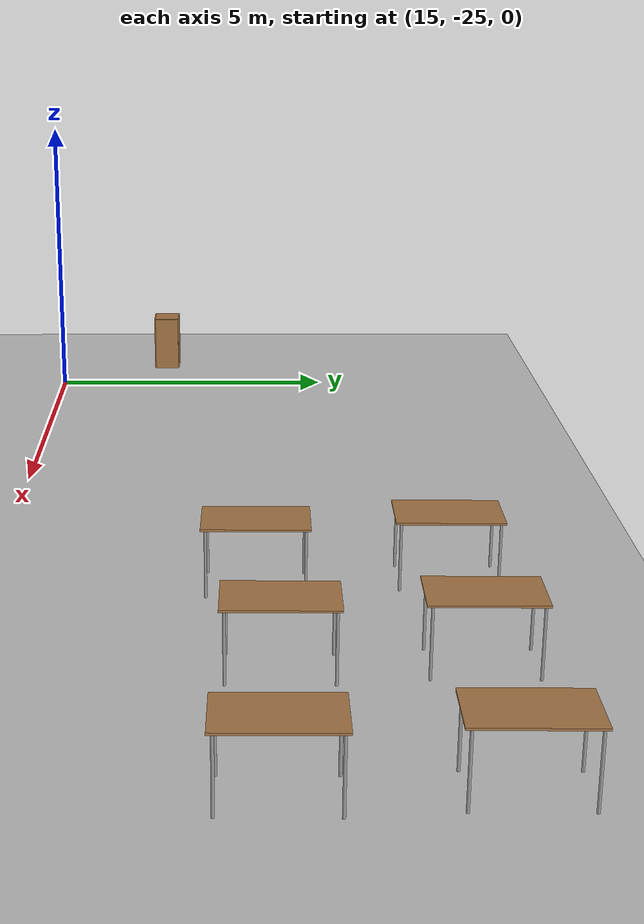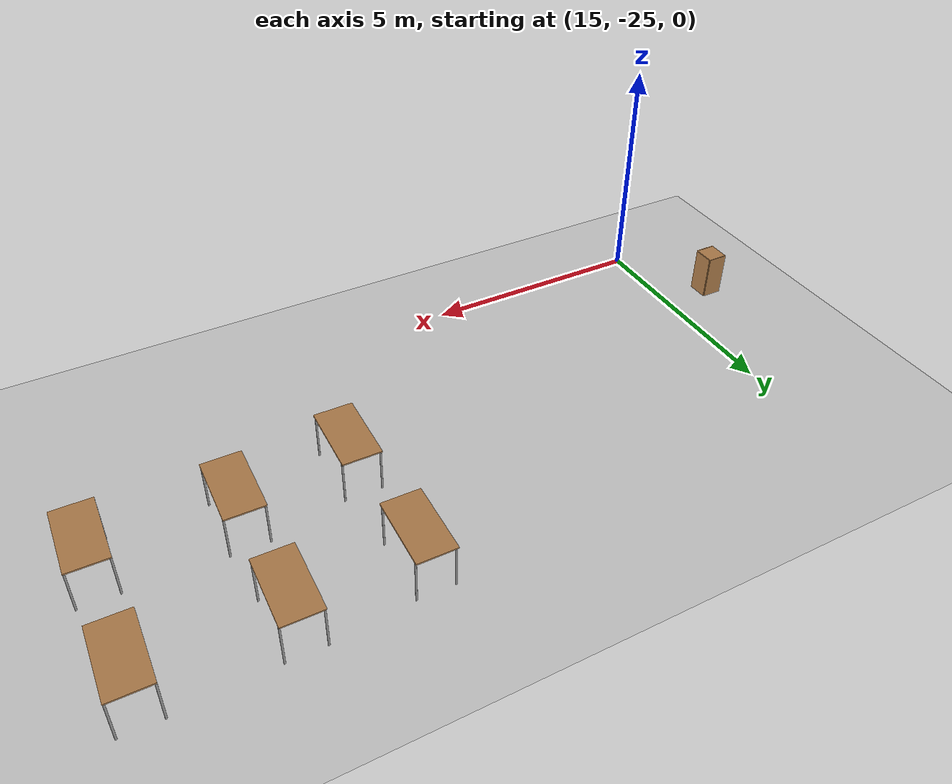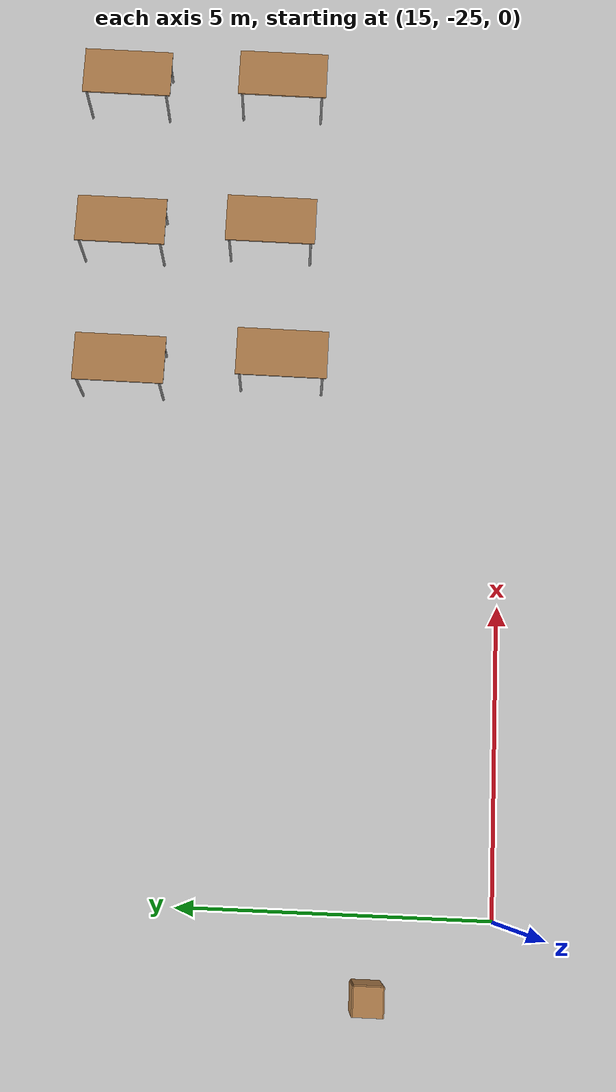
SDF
<sdf version="1.6">
 <world name="default">
  <model name="ground_plane">
   <static>1</static>
   <link name="link">
    <collision name="collision">
     <geometry><plane><normal>0 0 1</normal><size>100 100</size></plane></geometry>
     <surface>
      <contact><collide_bitmask>65535</collide_bitmask></contact>
      <friction><ode><mu>100</mu><mu2>50</mu2></ode></friction>
     </surface>
    </collision>
    <visual name="visual">
     <cast_shadows>0</cast_shadows>
     <geometry><plane><normal>0 0 1</normal><size>100 100</size></plane></geometry>
     <material>
      <script><uri>file://media/materials/scripts/gazebo.material</uri><name>Gazebo/Grey</name></script>
     </material>
    </visual>
   </link>
  </model>
  <model name="cabinet_1">
   <static>1</static>
   <link name="cabinet_bottom_plate">
    <inertial>
     <pose>0 0 -1 0 -0 0</pose>
     <inertia><ixx>2.05</ixx><ixy>0</ixy><ixz>0</ixz><iyy>2.05</iyy><iyz>0</iyz><izz>2.05</izz></inertia>
     <mass>25</mass>
    </inertial>
    <collision name="cabinet_bottom_plate_geom">
     <pose>0 0 0.01 0 -0 0</pose>
     <geometry><box><size>0.45 0.45 0.02</size></box></geometry>
    </collision>
    <visual name="cabinet_bottom_plate_geom_visual">
     <pose>0 0 0.01 0 -0 0</pose>
     <geometry><box><size>0.45 0.45 0.02</size></box></geometry>
     <material>
      <script><uri>file://media/materials/scripts/gazebo.material</uri><name>Gazebo/Wood</name></script>
     </material>
    </visual>
    <collision name="cabinet_bottom_plate_geom_cabinet_back_plate">
     <pose>0.235 0 0.51 0 -0 0</pose>
     <geometry><box><size>0.02 0.45 1.02</size></box></geometry>
    </collision>
    <visual name="cabinet_bottom_plate_geom_cabinet_back_plate_visual">
     <pose>0.235 0 0.51 0 -0 0</pose>
     <geometry><box><size>0.02 0.45 1.02</size></box></geometry>
     <material>
      <script><uri>file://media/materials/scripts/gazebo.material</uri><name>Gazebo/Wood</name></script>
     </material>
    </visual>
    <collision name="cabinet_bottom_plate_geom_cabinet_left_plate">
     <pose>0 0.235 0.51 0 -0 0</pose>
     <geometry><box><size>0.45 0.02 1.02</size></box></geometry>
    </collision>
    <visual name="cabinet_bottom_plate_geom_cabinet_left_plate_visual">
     <pose>0 0.235 0.51 0 -0 0</pose>
     <geometry><box><size>0.45 0.02 1.02</size></box></geometry>
     <material>
      <script><uri>file://media/materials/scripts/gazebo.material</uri><name>Gazebo/Wood</name></script>
     </material>
    </visual>
    <collision name="cabinet_bottom_plate_geom_cabinet_middle_plate">
     <pose>0 0 0.51 0 -0 0</pose>
     <geometry><box><size>0.45 0.45 0.02</size></box></geometry>
    </collision>
    <visual name="cabinet_bottom_plate_geom_cabinet_middle_plate_visual">
     <pose>0 0 0.51 0 -0 0</pose>
     <geometry><box><size>0.45 0.45 0.02</size></box></geometry>
     <material>
      <script><uri>file://media/materials/scripts/gazebo.material</uri><name>Gazebo/Wood</name></script>
     </material>
    </visual>
    <collision name="cabinet_bottom_plate_geom_cabinet_right_plate">
     <pose>0 -0.235 0.51 0 -0 0</pose>
     <geometry><box><size>0.45 0.02 1.02</size></box></geometry>
    </collision>
    <visual name="cabinet_bottom_plate_geom_cabinet_right_plate_visual">
     <pose>0 -0.235 0.51 0 -0 0</pose>
     <geometry><box><size>0.45 0.02 1.02</size></box></geometry>
     <material>
      <script><uri>file://media/materials/scripts/gazebo.material</uri><name>Gazebo/Wood</name></script>
     </material>
    </visual>
    <collision name="cabinet_bottom_plate_geom_cabinet_top_plate">
     <pose>0 0 1.01 0 -0 0</pose>
     <geometry><box><size>0.45 0.45 0.02</size></box></geometry>
    </collision>
    <visual name="cabinet_bottom_plate_geom_cabinet_top_plate_visual">
     <pose>0 0 1.01 0 -0 0</pose>
     <geometry><box><size>0.45 0.45 0.02</size></box></geometry>
     <material>
      <script><uri>file://media/materials/scripts/gazebo.material</uri><name>Gazebo/Wood</name></script>
     </material>
    </visual>
   </link>
   <pose>13.8077 -23.0331 0 0 -0 0</pose>
  </model>
  <model name="table">
   <static>1</static>
   <link name="link">
    <collision name="surface">
     <pose>0 0 1 0 -0 0</pose>
     <geometry><box><size>1.5 0.8 0.03</size></box></geometry>
     <surface><friction><ode><mu>0.6</mu><mu2>0.6</mu2></ode></friction></surface>
    </collision>
    <visual name="visual1">
     <pose>0 0 1 0 -0 0</pose>
     <geometry><box><size>1.5 0.8 0.03</size></box></geometry>
     <material>
      <script><uri>file://media/materials/scripts/gazebo.material</uri><name>Gazebo/Wood</name></script>
     </material>
    </visual>
    <collision name="front_left_leg">
     <pose>0.68 0.38 0.5 0 -0 0</pose>
     <geometry><cylinder><radius>0.02</radius><length>1</length></cylinder></geometry>
    </collision>
    <visual name="front_left_leg">
     <pose>0.68 0.38 0.5 0 -0 0</pose>
     <geometry><cylinder><radius>0.02</radius><length>1</length></cylinder></geometry>
     <material>
      <script><uri>file://media/materials/scripts/gazebo.material</uri><name>Gazebo/Grey</name></script>
     </material>
    </visual>
    <collision name="front_right_leg">
     <pose>0.68 -0.38 0.5 0 -0 0</pose>
     <geometry><cylinder><radius>0.02</radius><length>1</length></cylinder></geometry>
    </collision>
    <visual name="front_right_leg">
     <pose>0.68 -0.38 0.5 0 -0 0</pose>
     <geometry><cylinder><radius>0.02</radius><length>1</length></cylinder></geometry>
     <material>
      <script><uri>file://media/materials/scripts/gazebo.material</uri><name>Gazebo/Grey</name></script>
     </material>
    </visual>
    <collision name="back_right_leg">
     <pose>-0.68 -0.38 0.5 0 -0 0</pose>
     <geometry><cylinder><radius>0.02</radius><length>1</length></cylinder></geometry>
    </collision>
    <visual name="back_right_leg">
     <pose>-0.68 -0.38 0.5 0 -0 0</pose>
     <geometry><cylinder><radius>0.02</radius><length>1</length></cylinder></geometry>
     <material>
      <script><uri>file://media/materials/scripts/gazebo.material</uri><name>Gazebo/Grey</name></script>
     </material>
    </visual>
    <collision name="back_left_leg">
     <pose>-0.68 0.38 0.5 0 -0 0</pose>
     <geometry><cylinder><radius>0.02</radius><length>1</length></cylinder></geometry>
    </collision>
    <visual name="back_left_leg">
     <pose>-0.68 0.38 0.5 0 -0 0</pose>
     <geometry><cylinder><radius>0.02</radius><length>1</length></cylinder></geometry>
     <material>
      <script><uri>file://media/materials/scripts/gazebo.material</uri><name>Gazebo/Grey</name></script>
     </material>
    </visual>
   </link>
   <pose>28.8746 -21.0889 0 0 -0 1.56039</pose>
  </model>
  <model name="table_clone">
   <static>1</static>
   <link name="link">
    <collision name="surface">
     <pose>0 0 1 0 -0 0</pose>
     <geometry><box><size>1.5 0.8 0.03</size></box></geometry>
     <surface><friction><ode><mu>0.6</mu><mu2>0.6</mu2></ode></friction></surface>
    </collision>
    <visual name="visual1">
     <pose>0 0 1 0 -0 0</pose>
     <geometry><box><size>1.5 0.8 0.03</size></box></geometry>
     <material>
      <script><uri>file://media/materials/scripts/gazebo.material</uri><name>Gazebo/Wood</name></script>
     </material>
    </visual>
    <collision name="front_left_leg">
     <pose>0.68 0.38 0.5 0 -0 0</pose>
     <geometry><cylinder><radius>0.02</radius><length>1</length></cylinder></geometry>
    </collision>
    <visual name="front_left_leg">
     <pose>0.68 0.38 0.5 0 -0 0</pose>
     <geometry><cylinder><radius>0.02</radius><length>1</length></cylinder></geometry>
     <material>
      <script><uri>file://media/materials/scripts/gazebo.material</uri><name>Gazebo/Grey</name></script>
     </material>
    </visual>
    <collision name="front_right_leg">
     <pose>0.68 -0.38 0.5 0 -0 0</pose>
     <geometry><cylinder><radius>0.02</radius><length>1</length></cylinder></geometry>
    </collision>
    <visual name="front_right_leg">
     <pose>0.68 -0.38 0.5 0 -0 0</pose>
     <geometry><cylinder><radius>0.02</radius><length>1</length></cylinder></geometry>
     <material>
      <script><uri>file://media/materials/scripts/gazebo.material</uri><name>Gazebo/Grey</name></script>
     </material>
    </visual>
    <collision name="back_right_leg">
     <pose>-0.68 -0.38 0.5 0 -0 0</pose>
     <geometry><cylinder><radius>0.02</radius><length>1</length></cylinder></geometry>
    </collision>
    <visual name="back_right_leg">
     <pose>-0.68 -0.38 0.5 0 -0 0</pose>
     <geometry><cylinder><radius>0.02</radius><length>1</length></cylinder></geometry>
     <material>
      <script><uri>file://media/materials/scripts/gazebo.material</uri><name>Gazebo/Grey</name></script>
     </material>
    </visual>
    <collision name="back_left_leg">
     <pose>-0.68 0.38 0.5 0 -0 0</pose>
     <geometry><cylinder><radius>0.02</radius><length>1</length></cylinder></geometry>
    </collision>
    <visual name="back_left_leg">
     <pose>-0.68 0.38 0.5 0 -0 0</pose>
     <geometry><cylinder><radius>0.02</radius><length>1</length></cylinder></geometry>
     <material>
      <script><uri>file://media/materials/scripts/gazebo.material</uri><name>Gazebo/Grey</name></script>
     </material>
    </visual>
   </link>
   <pose>28.7951 -18.4331 0 0 -0 1.56039</pose>
  </model>
  <model name="table_clone_0">
   <static>1</static>
   <link name="link">
    <collision name="surface">
     <pose>0 0 1 0 -0 0</pose>
     <geometry><box><size>1.5 0.8 0.03</size></box></geometry>
     <surface><friction><ode><mu>0.6</mu><mu2>0.6</mu2></ode></friction></surface>
    </collision>
    <visual name="visual1">
     <pose>0 0 1 0 -0 0</pose>
     <geometry><box><size>1.5 0.8 0.03</size></box></geometry>
     <material>
      <script><uri>file://media/materials/scripts/gazebo.material</uri><name>Gazebo/Wood</name></script>
     </material>
    </visual>
    <collision name="front_left_leg">
     <pose>0.68 0.38 0.5 0 -0 0</pose>
     <geometry><cylinder><radius>0.02</radius><length>1</length></cylinder></geometry>
    </collision>
    <visual name="front_left_leg">
     <pose>0.68 0.38 0.5 0 -0 0</pose>
     <geometry><cylinder><radius>0.02</radius><length>1</length></cylinder></geometry>
     <material>
      <script><uri>file://media/materials/scripts/gazebo.material</uri><name>Gazebo/Grey</name></script>
     </material>
    </visual>
    <collision name="front_right_leg">
     <pose>0.68 -0.38 0.5 0 -0 0</pose>
     <geometry><cylinder><radius>0.02</radius><length>1</length></cylinder></geometry>
    </collision>
    <visual name="front_right_leg">
     <pose>0.68 -0.38 0.5 0 -0 0</pose>
     <geometry><cylinder><radius>0.02</radius><length>1</length></cylinder></geometry>
     <material>
      <script><uri>file://media/materials/scripts/gazebo.material</uri><name>Gazebo/Grey</name></script>
     </material>
    </visual>
    <collision name="back_right_leg">
     <pose>-0.68 -0.38 0.5 0 -0 0</pose>
     <geometry><cylinder><radius>0.02</radius><length>1</length></cylinder></geometry>
    </collision>
    <visual name="back_right_leg">
     <pose>-0.68 -0.38 0.5 0 -0 0</pose>
     <geometry><cylinder><radius>0.02</radius><length>1</length></cylinder></geometry>
     <material>
      <script><uri>file://media/materials/scripts/gazebo.material</uri><name>Gazebo/Grey</name></script>
     </material>
    </visual>
    <collision name="back_left_leg">
     <pose>-0.68 0.38 0.5 0 -0 0</pose>
     <geometry><cylinder><radius>0.02</radius><length>1</length></cylinder></geometry>
    </collision>
    <visual name="back_left_leg">
     <pose>-0.68 0.38 0.5 0 -0 0</pose>
     <geometry><cylinder><radius>0.02</radius><length>1</length></cylinder></geometry>
     <material>
      <script><uri>file://media/materials/scripts/gazebo.material</uri><name>Gazebo/Grey</name></script>
     </material>
    </visual>
   </link>
   <pose>26.2163 -21.0073 0 0 -0 1.56039</pose>
  </model>
  <model name="table_clone_1">
   <static>1</static>
   <link name="link">
    <collision name="surface">
     <pose>0 0 1 0 -0 0</pose>
     <geometry><box><size>1.5 0.8 0.03</size></box></geometry>
     <surface><friction><ode><mu>0.6</mu><mu2>0.6</mu2></ode></friction></surface>
    </collision>
    <visual name="visual1">
     <pose>0 0 1 0 -0 0</pose>
     <geometry><box><size>1.5 0.8 0.03</size></box></geometry>
     <material>
      <script><uri>file://media/materials/scripts/gazebo.material</uri><name>Gazebo/Wood</name></script>
     </material>
    </visual>
    <collision name="front_left_leg">
     <pose>0.68 0.38 0.5 0 -0 0</pose>
     <geometry><cylinder><radius>0.02</radius><length>1</length></cylinder></geometry>
    </collision>
    <visual name="front_left_leg">
     <pose>0.68 0.38 0.5 0 -0 0</pose>
     <geometry><cylinder><radius>0.02</radius><length>1</length></cylinder></geometry>
     <material>
      <script><uri>file://media/materials/scripts/gazebo.material</uri><name>Gazebo/Grey</name></script>
     </material>
    </visual>
    <collision name="front_right_leg">
     <pose>0.68 -0.38 0.5 0 -0 0</pose>
     <geometry><cylinder><radius>0.02</radius><length>1</length></cylinder></geometry>
    </collision>
    <visual name="front_right_leg">
     <pose>0.68 -0.38 0.5 0 -0 0</pose>
     <geometry><cylinder><radius>0.02</radius><length>1</length></cylinder></geometry>
     <material>
      <script><uri>file://media/materials/scripts/gazebo.material</uri><name>Gazebo/Grey</name></script>
     </material>
    </visual>
    <collision name="back_right_leg">
     <pose>-0.68 -0.38 0.5 0 -0 0</pose>
     <geometry><cylinder><radius>0.02</radius><length>1</length></cylinder></geometry>
    </collision>
    <visual name="back_right_leg">
     <pose>-0.68 -0.38 0.5 0 -0 0</pose>
     <geometry><cylinder><radius>0.02</radius><length>1</length></cylinder></geometry>
     <material>
      <script><uri>file://media/materials/scripts/gazebo.material</uri><name>Gazebo/Grey</name></script>
     </material>
    </visual>
    <collision name="back_left_leg">
     <pose>-0.68 0.38 0.5 0 -0 0</pose>
     <geometry><cylinder><radius>0.02</radius><length>1</length></cylinder></geometry>
    </collision>
    <visual name="back_left_leg">
     <pose>-0.68 0.38 0.5 0 -0 0</pose>
     <geometry><cylinder><radius>0.02</radius><length>1</length></cylinder></geometry>
     <material>
      <script><uri>file://media/materials/scripts/gazebo.material</uri><name>Gazebo/Grey</name></script>
     </material>
    </visual>
   </link>
   <pose>26.1007 -18.4995 0 0 -0 1.56039</pose>
  </model>
  <model name="table_clone_3">
   <static>1</static>
   <link name="link">
    <collision name="surface">
     <pose>0 0 1 0 -0 0</pose>
     <geometry><box><size>1.5 0.8 0.03</size></box></geometry>
     <surface><friction><ode><mu>0.6</mu><mu2>0.6</mu2></ode></friction></surface>
    </collision>
    <visual name="visual1">
     <pose>0 0 1 0 -0 0</pose>
     <geometry><box><size>1.5 0.8 0.03</size></box></geometry>
     <material>
      <script><uri>file://media/materials/scripts/gazebo.material</uri><name>Gazebo/Wood</name></script>
     </material>
    </visual>
    <collision name="front_left_leg">
     <pose>0.68 0.38 0.5 0 -0 0</pose>
     <geometry><cylinder><radius>0.02</radius><length>1</length></cylinder></geometry>
    </collision>
    <visual name="front_left_leg">
     <pose>0.68 0.38 0.5 0 -0 0</pose>
     <geometry><cylinder><radius>0.02</radius><length>1</length></cylinder></geometry>
     <material>
      <script><uri>file://media/materials/scripts/gazebo.material</uri><name>Gazebo/Grey</name></script>
     </material>
    </visual>
    <collision name="front_right_leg">
     <pose>0.68 -0.38 0.5 0 -0 0</pose>
     <geometry><cylinder><radius>0.02</radius><length>1</length></cylinder></geometry>
    </collision>
    <visual name="front_right_leg">
     <pose>0.68 -0.38 0.5 0 -0 0</pose>
     <geometry><cylinder><radius>0.02</radius><length>1</length></cylinder></geometry>
     <material>
      <script><uri>file://media/materials/scripts/gazebo.material</uri><name>Gazebo/Grey</name></script>
     </material>
    </visual>
    <collision name="back_right_leg">
     <pose>-0.68 -0.38 0.5 0 -0 0</pose>
     <geometry><cylinder><radius>0.02</radius><length>1</length></cylinder></geometry>
    </collision>
    <visual name="back_right_leg">
     <pose>-0.68 -0.38 0.5 0 -0 0</pose>
     <geometry><cylinder><radius>0.02</radius><length>1</length></cylinder></geometry>
     <material>
      <script><uri>file://media/materials/scripts/gazebo.material</uri><name>Gazebo/Grey</name></script>
     </material>
    </visual>
    <collision name="back_left_leg">
     <pose>-0.68 0.38 0.5 0 -0 0</pose>
     <geometry><cylinder><radius>0.02</radius><length>1</length></cylinder></geometry>
    </collision>
    <visual name="back_left_leg">
     <pose>-0.68 0.38 0.5 0 -0 0</pose>
     <geometry><cylinder><radius>0.02</radius><length>1</length></cylinder></geometry>
     <material>
      <script><uri>file://media/materials/scripts/gazebo.material</uri><name>Gazebo/Grey</name></script>
     </material>
    </visual>
   </link>
   <pose>23.6885 -18.6331 0 0 -0 1.56039</pose>
  </model>
  <model name="table_clone_2">
   <static>1</static>
   <link name="link">
    <collision name="surface">
     <pose>0 0 1 0 -0 0</pose>
     <geometry><box><size>1.5 0.8 0.03</size></box></geometry>
     <surface><friction><ode><mu>0.6</mu><mu2>0.6</mu2></ode></friction></surface>
    </collision>
    <visual name="visual1">
     <pose>0 0 1 0 -0 0</pose>
     <geometry><box><size>1.5 0.8 0.03</size></box></geometry>
     <material>
      <script><uri>file://media/materials/scripts/gazebo.material</uri><name>Gazebo/Wood</name></script>
     </material>
    </visual>
    <collision name="front_left_leg">
     <pose>0.68 0.38 0.5 0 -0 0</pose>
     <geometry><cylinder><radius>0.02</radius><length>1</length></cylinder></geometry>
    </collision>
    <visual name="front_left_leg">
     <pose>0.68 0.38 0.5 0 -0 0</pose>
     <geometry><cylinder><radius>0.02</radius><length>1</length></cylinder></geometry>
     <material>
      <script><uri>file://media/materials/scripts/gazebo.material</uri><name>Gazebo/Grey</name></script>
     </material>
    </visual>
    <collision name="front_right_leg">
     <pose>0.68 -0.38 0.5 0 -0 0</pose>
     <geometry><cylinder><radius>0.02</radius><length>1</length></cylinder></geometry>
    </collision>
    <visual name="front_right_leg">
     <pose>0.68 -0.38 0.5 0 -0 0</pose>
     <geometry><cylinder><radius>0.02</radius><length>1</length></cylinder></geometry>
     <material>
      <script><uri>file://media/materials/scripts/gazebo.material</uri><name>Gazebo/Grey</name></script>
     </material>
    </visual>
    <collision name="back_right_leg">
     <pose>-0.68 -0.38 0.5 0 -0 0</pose>
     <geometry><cylinder><radius>0.02</radius><length>1</length></cylinder></geometry>
    </collision>
    <visual name="back_right_leg">
     <pose>-0.68 -0.38 0.5 0 -0 0</pose>
     <geometry><cylinder><radius>0.02</radius><length>1</length></cylinder></geometry>
     <material>
      <script><uri>file://media/materials/scripts/gazebo.material</uri><name>Gazebo/Grey</name></script>
     </material>
    </visual>
    <collision name="back_left_leg">
     <pose>-0.68 0.38 0.5 0 -0 0</pose>
     <geometry><cylinder><radius>0.02</radius><length>1</length></cylinder></geometry>
    </collision>
    <visual name="back_left_leg">
     <pose>-0.68 0.38 0.5 0 -0 0</pose>
     <geometry><cylinder><radius>0.02</radius><length>1</length></cylinder></geometry>
     <material>
      <script><uri>file://media/materials/scripts/gazebo.material</uri><name>Gazebo/Grey</name></script>
     </material>
    </visual>
   </link>
   <pose>23.8911 -21.2943 0 0 -0 1.56039</pose>
  </model>
 </world>
</sdf>
